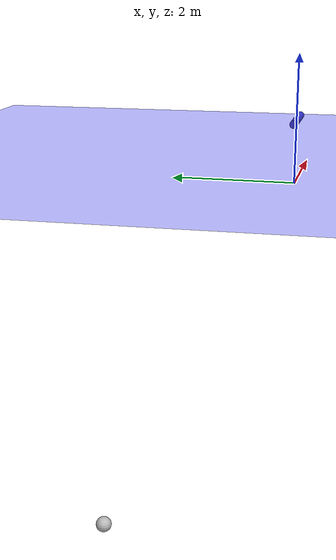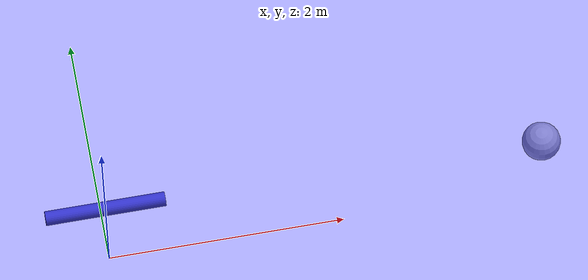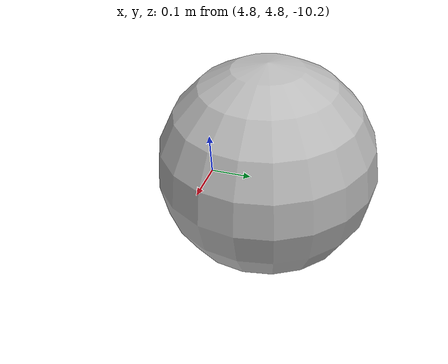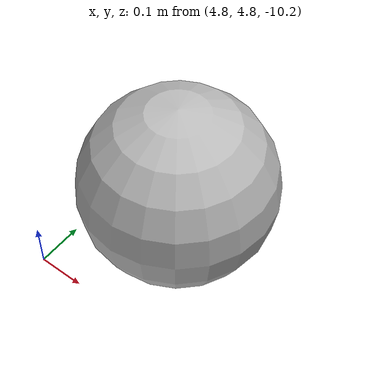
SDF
<sdf version='1.10'>
    <world name='buoyancy'>
        <physics name='1ms' type='ode'>
            <max_step_size>0.0005</max_step_size>
            <real_time_factor>1</real_time_factor>
            <real_time_update_rate>1000</real_time_update_rate>
        </physics>
        <gravity>0 0 -9.8000000000000007</gravity>
        <plugin name='gz::sim::systems::Physics' filename='gz-sim-physics-system' />
        <plugin name='gz::sim::systems::UserCommands' filename='gz-sim-user-commands-system' />
        <plugin name='gz::sim::systems::SceneBroadcaster' filename='gz-sim-scene-broadcaster-system' />
        <plugin name='gz::sim::systems::Buoyancy' filename='gz-sim-buoyancy-system'>
            <graded_buoyancy>
                <default_density>1000</default_density>
                <density_change>
                    <above_depth>0</above_depth>
                    <density>1</density>
                </density_change>
            </graded_buoyancy>
            <enable>ball::body</enable>
            <enable>cylinder::body</enable>
            <enable>robust_submarine::body</enable>
        </plugin>

        <magnetic_field>5.5644999999999998e-06 2.2875799999999999e-05 -4.2388400000000002e-05</magnetic_field>
        <atmosphere type='adiabatic' />
        <scene>
            <ambient>0.400000006 0.400000006 0.400000006 1</ambient>
            <background>0.699999988 0.699999988 0.699999988 1</background>
            <shadows>true</shadows>
        </scene>
        <model name='water_plane'>
            <static>true</static>
            <link name='link'>
                <visual name='water_plane'>
                    <geometry>
                        <plane>
                            <size>100 100</size>
                            <normal>0 0 1</normal>
                        </plane>
                    </geometry>
                    <material>
                        <ambient>0 0 1 0.5</ambient>
                        <diffuse>0 0 1 0.5</diffuse>
                        <specular>0 0 1 0.5</specular>
                    </material>
                </visual>
                <pose>0 0 0 0 0 0</pose>
                <inertial>
                    <pose>0 0 0 0 0 0</pose>
                    <mass>1</mass>
                    <inertia>
                        <ixx>1</ixx>
                        <ixy>0</ixy>
                        <ixz>0</ixz>
                        <iyy>1</iyy>
                        <iyz>0</iyz>
                        <izz>1</izz>
                    </inertia>
                </inertial>
                <enable_wind>false</enable_wind>
            </link>
            <pose>0 0 0 0 0 0</pose>
            <self_collide>false</self_collide>
        </model>
        <model name="robust_submarine">
            <plugin name='gz::sim::systems::Hydrodynamics' filename='gz-sim-hydrodynamics-system'>

                <!-- Added mass: -->
                <!-- First order stability derivative: -->
                <!-- Second order stability derivative: -->

                <xDotU>-1.1</xDotU> <!-- Added mass in surge (X), opposes acceleration along X
                (forward/back) -->
                <yDotV>-11.3</yDotV> <!-- Added mass in sway (Y), opposes acceleration along Y
                (sideways) -->
                <zDotW>-11.3</zDotW> <!-- Added mass in heave (Z), opposes acceleration along Z
                (up/down) -->
                <kDotP>0</kDotP> <!-- Added mass in roll (rotation about X), usually small/negligible -->
                <mDotQ>0</mDotQ> <!-- Added mass in pitch (rotation about Y), usually
                small/negligible -->
                <nDotR>0</nDotR> <!-- Added mass in yaw (rotation about Z), usually small/negligible -->

                <xU>-5</xU> <!-- Linear damping in surge (X), opposes velocity along X (forward/back) -->
                <yV>-12</yV> <!-- Linear damping in sway (Y), opposes velocity along Y (sideways) -->
                <zW>-10</zW> <!-- Linear damping in heave (Z), opposes velocity along Z (up/down) -->
                <kP>0</kP> <!-- Linear angular damping in roll (rotation about X) -->
                <mQ>0</mQ> <!-- Linear angular damping in pitch (rotation about Y) -->
                <nR>0</nR> <!-- Linear angular damping in yaw (rotation about Z) -->

                <xUabsU>-4.6</xUabsU> <!-- Quadratic damping in surge (X), opposes velocity squared
                along X
        (forward/back) -->
                <yVabsV>-60</yVabsV> <!-- Quadratic damping in sway (Y), opposes velocity squared
                along Y
        (sideways) -->
                <zWabsW>-60</zWabsW> <!-- Quadratic damping in heave (Z), opposes velocity squared
                along Z
        (up/down) -->
                <kPabsP>-0.05</kPabsP> <!-- Quadratic angular damping in roll (rotation about X) -->
                <mQabsQ>-0.5</mQabsQ> <!-- Quadratic angular damping in pitch (rotation about Y) -->
                <nRabsR>-5</nRabsR> <!-- Quadratic angular damping in yaw (rotation about Z) -->

                <link_name>body</link_name>

            </plugin>
            <pose>0 0 1 0 0 0</pose>
            <link name="body">
                <pose>0 0 0 0 0 0</pose>
                <inertial>
                    <mass>12</mass>
                    <inertia>
                        <ixx>0.0288</ixx>
                        <iyy>1.0144</iyy>
                        <izz>1.0144</izz>
                        <ixy>0</ixy>
                        <ixz>0</ixz>
                        <iyz>0</iyz>
                    </inertia>
                </inertial>
                <velocity_decay>
                    <linear>5.0</linear>
                    <angular>5.0</angular>
                </velocity_decay>
                <collision name="body_collision">
                    <geometry>
                        <box>
                            <size>1.0 0.12 0.12</size>
                        </box>
                    </geometry>
                </collision>
                <visual name="body_visual">
                    <geometry>
                        <cylinder>
                            <radius>0.06</radius>
                            <length>1.0</length>
                        </cylinder>
                    </geometry>
                    <pose>0 0 0 0 1.57 0</pose>
                    <material>
                        <diffuse>0.2 0.2 0.8 1</diffuse>
                        <ambient>0.2 0.2 0.8 1</ambient>
                    </material>
                </visual>
            </link>
        </model>
        <model name="ball">
            <plugin name='gz::sim::systems::Hydrodynamics' filename='gz-sim-hydrodynamics-system'>
                <!-- Added mass: -->
                <xDotU>-16.755161</xDotU>
                <yDotV>-16.755161</yDotV>
                <zDotW>-16.755161</zDotW>
                <kDotP>0</kDotP>
                <mDotQ>0</mDotQ>
                <nDotR>0</nDotR>
                <!-- First order stability derivative: -->
                <xU>0</xU>
                <yV>0</yV>
                <zW>0</zW>
                <kP>0</kP>
                <mQ>0</mQ>
                <nR>0</nR>
                <!-- Second order stability derivative: -->
                <xUabsU>-29.530971</xUabsU>
                <yVabsV>-29.530971</yVabsV>
                <zWabsW>-29.530971</zWabsW>
                <kPabsP>0</kPabsP>
                <mQabsQ>0</mQabsQ>
                <nRabsR>0</nRabsR>
                <link_name>body</link_name>
            </plugin>
            <link name='body'>
                <pose>5 5 -10 0 0 0</pose>
                <inertial>
                    <mass>25</mass>
                    <inertia>
                        <ixx>86.28907821859966</ixx>
                        <ixy>0</ixy>
                        <ixz>0</ixz>
                        <iyy>86.28907821859966</iyy>
                        <iyz>0</iyz>
                        <izz>5.026548245743671</izz>
                    </inertia>
                </inertial>

                <visual name='body_visual'>
                    <geometry>
                        <sphere>
                            <radius>0.2</radius>
                        </sphere>
                    </geometry>
                </visual>
                <collision name='body_collision'>
                    <geometry>
                        <sphere>
                            <radius>0.2</radius>
                        </sphere>
                    </geometry>
                </collision>
            </link>
        </model>
        <light name='sun' type='directional'>
            <pose>0 0 10 0 0 0</pose>
            <cast_shadows>true</cast_shadows>
            <intensity>1</intensity>
            <direction>-0.5 0.10000000000000001 -0.90000000000000002</direction>
            <diffuse>1 1 1 1</diffuse>
            <specular>0.5 0.5 0.5 1</specular>
            <attenuation>
                <range>1000</range>
                <linear>0.01</linear>
                <constant>0.90000000000000002</constant>
                <quadratic>0.001</quadratic>
            </attenuation>
            <spot>
                <inner_angle>0</inner_angle>
                <outer_angle>0</outer_angle>
                <falloff>0</falloff>
            </spot>
        </light>
    </world>
</sdf>
